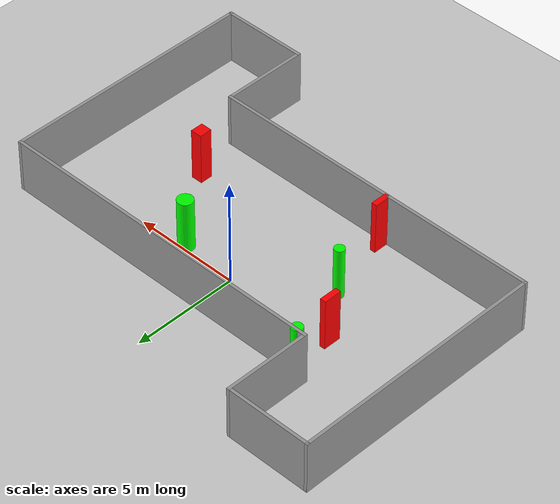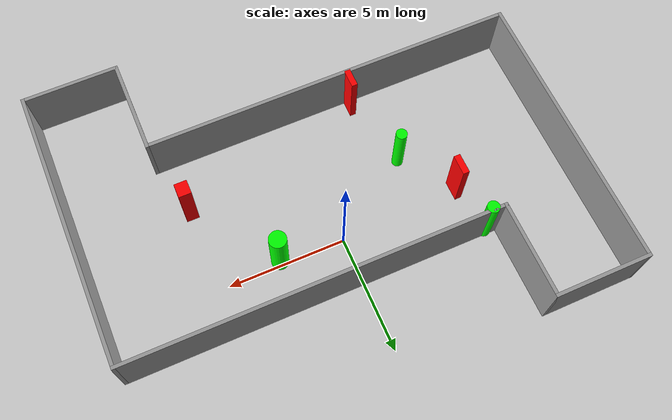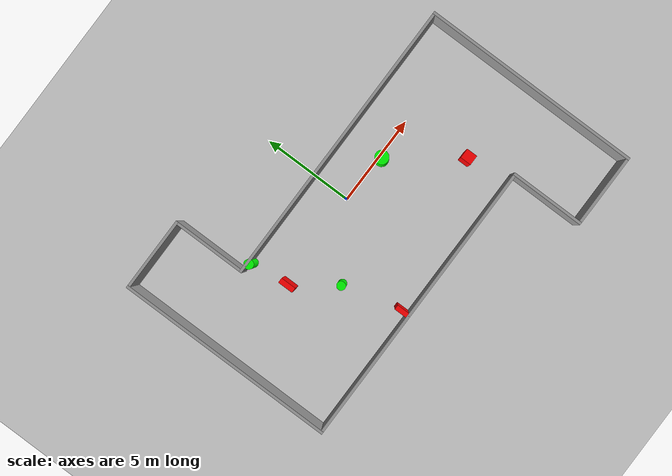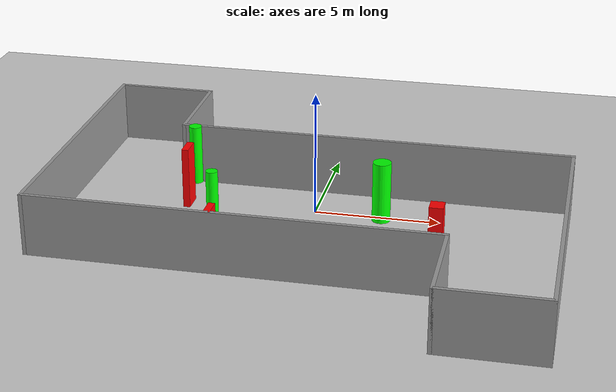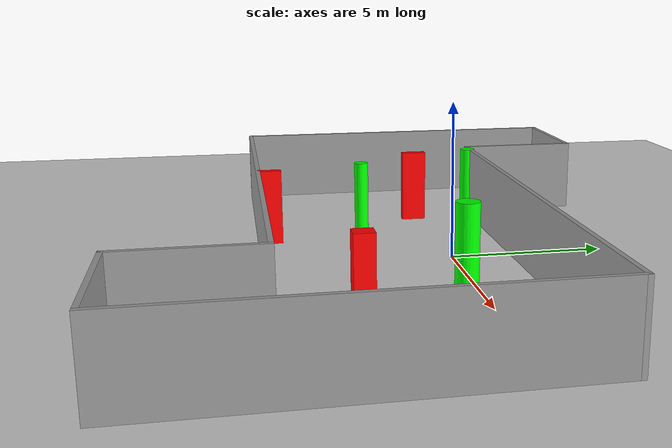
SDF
<sdf version="1.7">
 <world name="default">
  <light name="sun" type="directional">
   <pose>0 0 10 0 -0 0</pose>
   <diffuse>0.8 0.8 0.8 1</diffuse>
   <specular>0.2 0.2 0.2 1</specular>
   <attenuation>
    <range>1000</range>
    <constant>0.9</constant>
    <linear>0.01</linear>
    <quadratic>0.001</quadratic>
   </attenuation>
   <direction>-0.5 0.1 -0.9</direction>
   <spot><inner_angle>0</inner_angle><outer_angle>0</outer_angle><falloff>0</falloff></spot>
  </light>
  <model name="ground_plane">
   <static>1</static>
   <link name="link">
    <collision name="collision">
     <geometry><plane><normal>0 0 1</normal><size>100 100</size></plane></geometry>
     <surface>
      <contact><collide_bitmask>65535</collide_bitmask></contact>
      <friction><ode><mu>100</mu><mu2>50</mu2></ode></friction>
     </surface>
    </collision>
    <visual name="visual">
     <cast_shadows>0</cast_shadows>
     <geometry><plane><normal>0 0 1</normal><size>100 100</size></plane></geometry>
     <material>
      <script><uri>file://media/materials/scripts/gazebo.material</uri><name>Gazebo/Grey</name></script>
     </material>
    </visual>
   </link>
  </model>
  <gravity>0 0 -9.8</gravity>
  <magnetic_field>6e-06 2.3e-05 -4.2e-05</magnetic_field>
  <atmosphere type="adiabatic"/>
  <physics type="ode">
   <max_step_size>0.001</max_step_size>
   <real_time_factor>1</real_time_factor>
   <real_time_update_rate>1000</real_time_update_rate>
  </physics>
  <scene><ambient>0.4 0.4 0.4 1</ambient><background>0.7 0.7 0.7 1</background><shadows>1</shadows></scene>
  <spherical_coordinates>
   <surface_model>EARTH_WGS84</surface_model>
   <latitude_deg>0</latitude_deg>
   <longitude_deg>0</longitude_deg>
   <elevation>0</elevation>
   <heading_deg>0</heading_deg>
  </spherical_coordinates>
  <model name="my_base_walls">
   <link name="Wall_13">
    <collision name="Wall_13_Collision">
     <geometry><box><size>12.15 0.15 2.5</size></box></geometry>
     <pose>0 0 1.25 0 -0 0</pose>
    </collision>
    <visual name="Wall_13_Visual">
     <pose>0 0 1.25 0 -0 0</pose>
     <geometry><box><size>12.15 0.15 2.5</size></box></geometry>
     <material>
      <script><uri>file://media/materials/scripts/gazebo.material</uri><name>Gazebo/Grey</name></script>
      <ambient>1 1 1 1</ambient>
     </material>
     <meta><layer>0</layer></meta>
    </visual>
    <pose>10 -2 0 0 -0 1.5708</pose>
   </link>
   <link name="Wall_15">
    <collision name="Wall_15_Collision">
     <geometry><box><size>16.15 0.15 2.5</size></box></geometry>
     <pose>0 0 1.25 0 -0 0</pose>
    </collision>
    <visual name="Wall_15_Visual">
     <pose>0 0 1.25 0 -0 0</pose>
     <geometry><box><size>16.15 0.15 2.5</size></box></geometry>
     <material>
      <script><uri>file://media/materials/scripts/gazebo.material</uri><name>Gazebo/Grey</name></script>
      <ambient>1 1 1 1</ambient>
     </material>
     <meta><layer>0</layer></meta>
    </visual>
    <pose>2 4 0 0 -0 3.14159</pose>
   </link>
   <link name="Wall_17">
    <collision name="Wall_17_Collision">
     <geometry><box><size>4.15 0.15 2.5</size></box></geometry>
     <pose>0 0 1.25 0 -0 0</pose>
    </collision>
    <visual name="Wall_17_Visual">
     <pose>0 0 1.25 0 -0 0</pose>
     <geometry><box><size>4.15 0.15 2.5</size></box></geometry>
     <material>
      <script><uri>file://media/materials/scripts/gazebo.material</uri><name>Gazebo/Grey</name></script>
      <ambient>1 1 1 1</ambient>
     </material>
     <meta><layer>0</layer></meta>
    </visual>
    <pose>6 -6 0 0 -0 -1.5708</pose>
   </link>
   <link name="Wall_19">
    <collision name="Wall_19_Collision">
     <geometry><box><size>12.15 0.15 2.5</size></box></geometry>
     <pose>0 0 1.25 0 -0 0</pose>
    </collision>
    <visual name="Wall_19_Visual">
     <pose>0 0 1.25 0 -0 0</pose>
     <geometry><box><size>12.15 0.15 2.5</size></box></geometry>
     <material>
      <script><uri>file://media/materials/scripts/gazebo.material</uri><name>Gazebo/Grey</name></script>
      <ambient>1 1 1 1</ambient>
     </material>
     <meta><layer>0</layer></meta>
    </visual>
    <pose>-10 2 0 0 -0 1.5708</pose>
   </link>
   <link name="Wall_21">
    <collision name="Wall_21_Collision">
     <geometry><box><size>4.15 0.15 2.5</size></box></geometry>
     <pose>0 0 1.25 0 -0 0</pose>
    </collision>
    <visual name="Wall_21_Visual">
     <pose>0 0 1.25 0 -0 0</pose>
     <geometry><box><size>4.15 0.15 2.5</size></box></geometry>
     <material>
      <script><uri>file://media/materials/scripts/gazebo.material</uri><name>Gazebo/Grey</name></script>
      <ambient>1 1 1 1</ambient>
     </material>
     <meta><layer>0</layer></meta>
    </visual>
    <pose>-8 8 0 0 -0 0</pose>
   </link>
   <link name="Wall_23">
    <collision name="Wall_23_Collision">
     <geometry><box><size>4.15 0.15 2.5</size></box></geometry>
     <pose>0 0 1.25 0 -0 0</pose>
    </collision>
    <visual name="Wall_23_Visual">
     <pose>0 0 1.25 0 -0 0</pose>
     <geometry><box><size>4.15 0.15 2.5</size></box></geometry>
     <material>
      <script><uri>file://media/materials/scripts/gazebo.material</uri><name>Gazebo/Grey</name></script>
      <ambient>1 1 1 1</ambient>
     </material>
     <meta><layer>0</layer></meta>
    </visual>
    <pose>-6 6 0 0 -0 -1.5708</pose>
   </link>
   <link name="Wall_25">
    <collision name="Wall_25_Collision">
     <geometry><box><size>4.15 0.15 2.5</size></box></geometry>
     <pose>0 0 1.25 0 -0 0</pose>
    </collision>
    <visual name="Wall_25_Visual">
     <pose>0 0 1.25 0 -0 0</pose>
     <geometry><box><size>4.15 0.15 2.5</size></box></geometry>
     <material>
      <script><uri>file://media/materials/scripts/gazebo.material</uri><name>Gazebo/Grey</name></script>
      <ambient>1 1 1 1</ambient>
     </material>
     <meta><layer>0</layer></meta>
    </visual>
    <pose>8 -8 0 0 -0 0</pose>
   </link>
   <link name="Wall_9">
    <collision name="Wall_9_Collision">
     <geometry><box><size>16.15 0.15 2.5</size></box></geometry>
     <pose>0 0 1.25 0 -0 0</pose>
    </collision>
    <visual name="Wall_9_Visual">
     <pose>0 0 1.25 0 -0 0</pose>
     <geometry><box><size>16.15 0.15 2.5</size></box></geometry>
     <material>
      <script><uri>file://media/materials/scripts/gazebo.material</uri><name>Gazebo/Grey</name></script>
      <ambient>1 1 1 1</ambient>
     </material>
     <meta><layer>0</layer></meta>
    </visual>
    <pose>-2 -4 0 0 -0 3.14159</pose>
   </link>
   <static>1</static>
   <pose>-0 -2 0 0 -0 0</pose>
  </model>
  <model name="cylinder1">
   <static>1</static>
   <link name="link">
    <inertial>
     <mass>1</mass>
     <inertia><ixx>0.5</ixx><ixy>0</ixy><ixz>0</ixz><iyy>0.5</iyy><iyz>0</iyz><izz>1</izz></inertia>
    </inertial>
    <collision name="collision">
     <geometry><cylinder><radius>0.237556612652139</radius><length>2.5</length></cylinder></geometry>
    </collision>
    <visual name="visual">
     <geometry><cylinder><radius>0.237556612652139</radius><length>2.5</length></cylinder></geometry>
     <material>
      <ambient>0 1 0 1</ambient>
      <diffuse>0 1 0 1</diffuse>
      <specular>0.1 0.1 0.1 1</specular>
      <emissive>0 0 0 0</emissive>
     </material>
    </visual>
   </link>
   <pose>-3.5997846265939604 -2.4110952248131454 1.25 0 0 0</pose>
  </model>
  <model name="cylinder2">
   <static>1</static>
   <link name="link">
    <inertial>
     <mass>1</mass>
     <inertia><ixx>0.5</ixx><ixy>0</ixy><ixz>0</ixz><iyy>0.5</iyy><iyz>0</iyz><izz>1</izz></inertia>
    </inertial>
    <collision name="collision">
     <geometry><cylinder><radius>0.3691153410252671</radius><length>2.5</length></cylinder></geometry>
    </collision>
    <visual name="visual">
     <geometry><cylinder><radius>0.3691153410252671</radius><length>2.5</length></cylinder></geometry>
     <material>
      <ambient>0 1 0 1</ambient>
      <diffuse>0 1 0 1</diffuse>
      <specular>0.1 0.1 0.1 1</specular>
      <emissive>0 0 0 0</emissive>
     </material>
    </visual>
   </link>
   <pose>2.709977786879808 -0.1972925218672028 1.25 0 0 0</pose>
  </model>
  <model name="cylinder3">
   <static>1</static>
   <link name="link">
    <inertial>
     <mass>1</mass>
     <inertia><ixx>0.5</ixx><ixy>0</ixy><ixz>0</ixz><iyy>0.5</iyy><iyz>0</iyz><izz>1</izz></inertia>
    </inertial>
    <collision name="collision">
     <geometry><cylinder><radius>0.2613823030177159</radius><length>2.5</length></cylinder></geometry>
    </collision>
    <visual name="visual">
     <geometry><cylinder><radius>0.2613823030177159</radius><length>2.5</length></cylinder></geometry>
     <material>
      <ambient>0 1 0 1</ambient>
      <diffuse>0 1 0 1</diffuse>
      <specular>0.1 0.1 0.1 1</specular>
      <emissive>0 0 0 0</emissive>
     </material>
    </visual>
   </link>
   <pose>-5.497082454026312 1.8954159173762193 1.25 0 0 0</pose>
  </model>
  <model name="box1">
   <static>1</static>
   <link name="link">
    <inertial>
     <mass>1</mass>
     <inertia><ixx>0.083</ixx><ixy>0</ixy><ixz>0</ixz><iyy>0.083</iyy><iyz>0</iyz><izz>0.083</izz></inertia>
    </inertial>
    <collision name="collision">
     <geometry><box><size>0.27482914627146543 0.8439796746674649 2.5</size></box></geometry>
    </collision>
    <visual name="visual">
     <geometry><box><size>0.27482914627146543 0.8439796746674649 2.5</size></box></geometry>
     <material>
      <ambient>1 0 0 1</ambient>
      <diffuse>1 0 0 1</diffuse>
      <specular>0.1 0.1 0.1 1</specular>
      <emissive>0 0 0 0</emissive>
     </material>
    </visual>
    <sensor name="my_contact" type="contact">
     <contact><collision>box_collision</collision><topic>__default_topic__</topic></contact>
    </sensor>
   </link>
   <pose>-5.197337333887974 -0.24167351668206027 1.25 0 0 0</pose>
  </model>
  <model name="box2">
   <static>1</static>
   <link name="link">
    <inertial>
     <mass>1</mass>
     <inertia><ixx>0.083</ixx><ixy>0</ixy><ixz>0</ixz><iyy>0.083</iyy><iyz>0</iyz><izz>0.083</izz></inertia>
    </inertial>
    <collision name="collision">
     <geometry><box><size>0.5390000193680262 0.6013977768734172 2.5</size></box></geometry>
    </collision>
    <visual name="visual">
     <geometry><box><size>0.5390000193680262 0.6013977768734172 2.5</size></box></geometry>
     <material>
      <ambient>1 0 0 1</ambient>
      <diffuse>1 0 0 1</diffuse>
      <specular>0.1 0.1 0.1 1</specular>
      <emissive>0 0 0 0</emissive>
     </material>
    </visual>
    <sensor name="my_contact" type="contact">
     <contact><collision>box_collision</collision><topic>__default_topic__</topic></contact>
    </sensor>
   </link>
   <pose>5.322561868256669 -3.637385657876541 1.25 0 0 0</pose>
  </model>
  <model name="box3">
   <static>1</static>
   <link name="link">
    <inertial>
     <mass>1</mass>
     <inertia><ixx>0.083</ixx><ixy>0</ixy><ixz>0</ixz><iyy>0.083</iyy><iyz>0</iyz><izz>0.083</izz></inertia>
    </inertial>
    <collision name="collision">
     <geometry><box><size>0.25949678181733005 0.7854898653210929 2.5</size></box></geometry>
    </collision>
    <visual name="visual">
     <geometry><box><size>0.25949678181733005 0.7854898653210929 2.5</size></box></geometry>
     <material>
      <ambient>1 0 0 1</ambient>
      <diffuse>1 0 0 1</diffuse>
      <specular>0.1 0.1 0.1 1</specular>
      <emissive>0 0 0 0</emissive>
     </material>
    </visual>
    <sensor name="my_contact" type="contact">
     <contact><collision>box_collision</collision><topic>__default_topic__</topic></contact>
    </sensor>
   </link>
   <pose>-2.8014592002409513 -5.627510450629115 1.25 0 0 0</pose>
  </model>
 </world>
</sdf>
